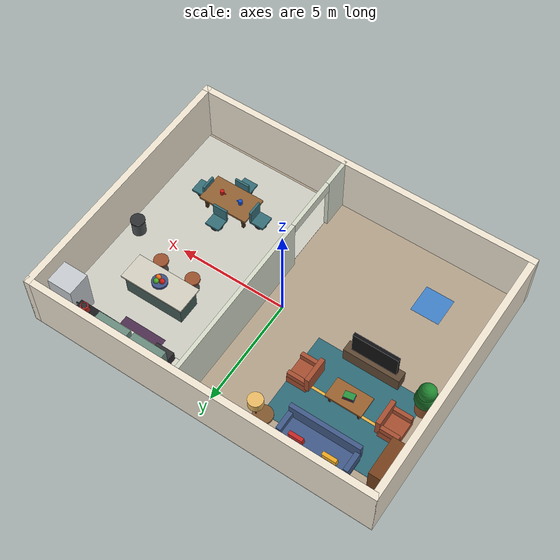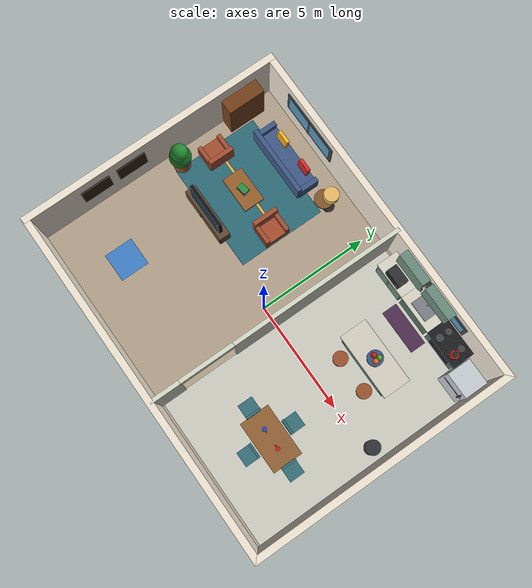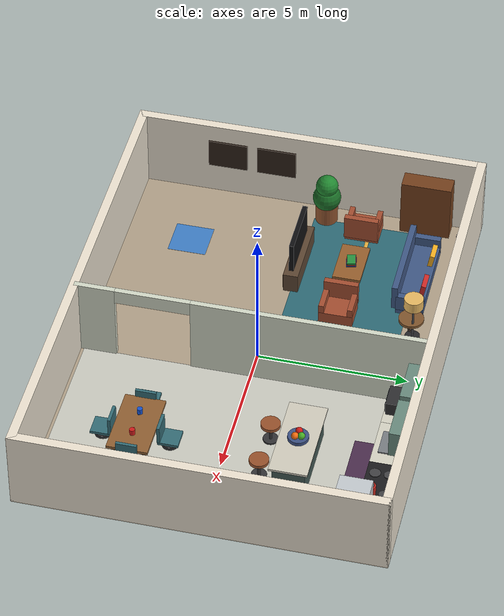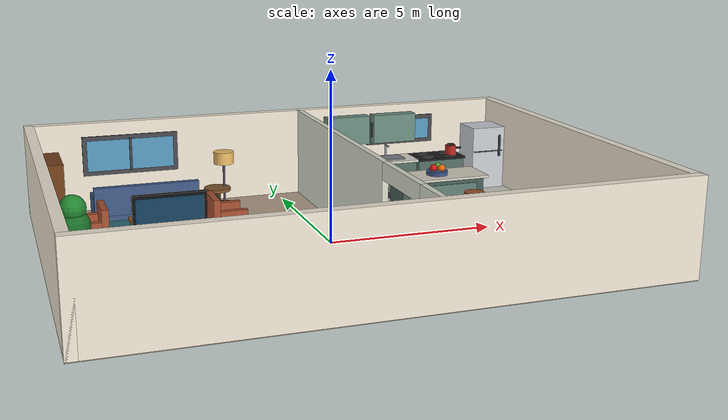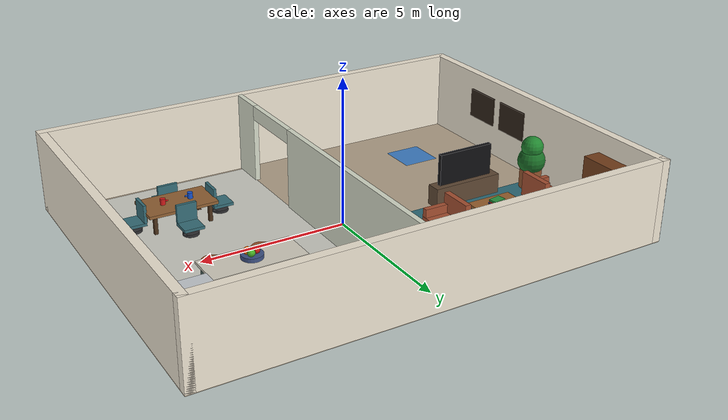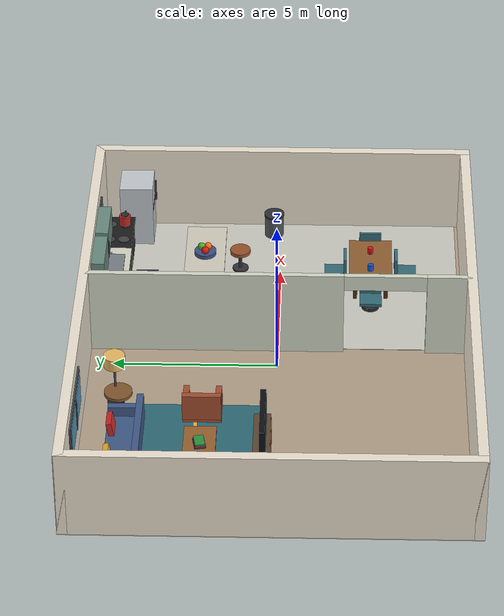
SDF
<?xml version="1.0"?>
<sdf version="1.9">
  <world name="indoor_home_vlm">
    <physics name="fixed_1ms" type="ignored">
      <max_step_size>0.001</max_step_size>
      <real_time_factor>1.0</real_time_factor>
      <real_time_update_rate>1000</real_time_update_rate>
    </physics>

    <gravity>0 0 -9.80665</gravity>
    <plugin filename="gz-sim-physics-system" name="gz::sim::systems::Physics"/>
    <plugin filename="gz-sim-user-commands-system" name="gz::sim::systems::UserCommands"/>
    <plugin filename="gz-sim-scene-broadcaster-system" name="gz::sim::systems::SceneBroadcaster"/>
    <plugin filename="gz-sim-sensors-system" name="gz::sim::systems::Sensors">
      <render_engine>ogre2</render_engine>
    </plugin>

    <!-- Reuse the warm neutral scene palette from the hotel demo. -->
    <scene>
      <ambient>0.62 0.58 0.53 1</ambient>
      <background>0.16 0.18 0.22 1</background>
      <shadows>true</shadows>
    </scene>

    <light name="living_room_light" type="point">
      <pose>-4 1.0 4.0 0 0 0</pose>
      <cast_shadows>true</cast_shadows>
      <diffuse>1.0 0.84 0.68 1</diffuse>
      <specular>0.16 0.14 0.12 1</specular>
      <attenuation>
        <range>13</range>
        <constant>0.75</constant>
        <linear>0.035</linear>
        <quadratic>0.002</quadratic>
      </attenuation>
    </light>

    <light name="kitchen_light" type="point">
      <pose>4 1.0 4.0 0 0 0</pose>
      <cast_shadows>false</cast_shadows>
      <diffuse>0.92 0.94 1.0 1</diffuse>
      <specular>0.16 0.16 0.18 1</specular>
      <attenuation>
        <range>13</range>
        <constant>0.75</constant>
        <linear>0.035</linear>
        <quadratic>0.002</quadratic>
      </attenuation>
    </light>

    <!-- ========================= ARCHITECTURE ========================= -->

    <model name="home_floor">
      <static>true</static>
      <link name="floor_link">
        <collision name="floor_collision">
          <geometry>
            <plane><normal>0 0 1</normal><size>16 12</size></plane>
          </geometry>
          <surface>
            <friction>
              <ode><mu>1.2</mu><mu2>1.2</mu2></ode>
            </friction>
          </surface>
        </collision>
        <visual name="floor_visual">
          <geometry>
            <plane><normal>0 0 1</normal><size>16 12</size></plane>
          </geometry>
          <material>
            <ambient>0.55 0.49 0.42 1</ambient>
            <diffuse>0.70 0.63 0.54 1</diffuse>
            <specular>0.12 0.12 0.12 1</specular>
          </material>
        </visual>
      </link>
    </model>

    <model name="living_room_rug">
      <static>true</static>
      <pose>-4.5 2.35 0.007 0 0 0</pose>
      <link name="rug_link">
        <visual name="rug_visual">
          <geometry><box><size>5.0 4.0 0.014</size></box></geometry>
          <material>
            <ambient>0.12 0.25 0.29 1</ambient>
            <diffuse>0.18 0.42 0.47 1</diffuse>
            <specular>0.02 0.02 0.02 1</specular>
          </material>
        </visual>
        <visual name="rug_center_stripe">
          <pose>0 0 0.009 0 0 0</pose>
          <geometry><box><size>4.3 0.12 0.006</size></box></geometry>
          <material>
            <ambient>0.74 0.54 0.18 1</ambient>
            <diffuse>0.92 0.70 0.25 1</diffuse>
          </material>
        </visual>
      </link>
    </model>

    <model name="kitchen_floor_inlay">
      <static>true</static>
      <pose>4.35 0 0.006 0 0 0</pose>
      <link name="inlay_link">
        <visual name="inlay_visual">
          <geometry><box><size>6.9 11.2 0.012</size></box></geometry>
          <material>
            <ambient>0.64 0.64 0.61 1</ambient>
            <diffuse>0.80 0.80 0.76 1</diffuse>
            <specular>0.18 0.18 0.18 1</specular>
          </material>
        </visual>
      </link>
    </model>

    <model name="north_wall">
      <static>true</static>
      <pose>0 5.85 1.4 0 0 0</pose>
      <link name="wall_link">
        <collision name="wall_collision">
          <geometry><box><size>16 0.30 2.8</size></box></geometry>
        </collision>
        <visual name="wall_visual">
          <geometry><box><size>16 0.30 2.8</size></box></geometry>
          <material>
            <ambient>0.82 0.78 0.72 1</ambient>
            <diffuse>0.94 0.90 0.83 1</diffuse>
          </material>
        </visual>
      </link>
    </model>

    <model name="south_wall">
      <static>true</static>
      <pose>0 -5.85 1.4 0 0 0</pose>
      <link name="wall_link">
        <collision name="wall_collision">
          <geometry><box><size>16 0.30 2.8</size></box></geometry>
        </collision>
        <visual name="wall_visual">
          <geometry><box><size>16 0.30 2.8</size></box></geometry>
          <material>
            <ambient>0.82 0.78 0.72 1</ambient>
            <diffuse>0.94 0.90 0.83 1</diffuse>
          </material>
        </visual>
      </link>
    </model>

    <model name="west_wall">
      <static>true</static>
      <pose>-7.85 0 1.4 0 0 0</pose>
      <link name="wall_link">
        <collision name="wall_collision">
          <geometry><box><size>0.30 12 2.8</size></box></geometry>
        </collision>
        <visual name="wall_visual">
          <geometry><box><size>0.30 12 2.8</size></box></geometry>
          <material>
            <ambient>0.82 0.78 0.72 1</ambient>
            <diffuse>0.94 0.90 0.83 1</diffuse>
          </material>
        </visual>
      </link>
    </model>

    <model name="east_wall">
      <static>true</static>
      <pose>7.85 0 1.4 0 0 0</pose>
      <link name="wall_link">
        <collision name="wall_collision">
          <geometry><box><size>0.30 12 2.8</size></box></geometry>
        </collision>
        <visual name="wall_visual">
          <geometry><box><size>0.30 12 2.8</size></box></geometry>
          <material>
            <ambient>0.82 0.78 0.72 1</ambient>
            <diffuse>0.94 0.90 0.83 1</diffuse>
          </material>
        </visual>
      </link>
    </model>

    <!-- Two wall segments leave a 2.5 m opening from y=-4.5 to y=-2.0. -->
    <model name="room_partition_north">
      <static>true</static>
      <pose>0.85 1.925 1.4 0 0 0</pose>
      <link name="partition_link">
        <collision name="partition_collision">
          <geometry><box><size>0.18 7.85 2.8</size></box></geometry>
        </collision>
        <visual name="partition_visual">
          <geometry><box><size>0.18 7.85 2.8</size></box></geometry>
          <material>
            <ambient>0.70 0.72 0.66 1</ambient>
            <diffuse>0.84 0.86 0.79 1</diffuse>
          </material>
        </visual>
      </link>
    </model>

    <model name="room_partition_south">
      <static>true</static>
      <pose>0.85 -5.175 1.4 0 0 0</pose>
      <link name="partition_link">
        <collision name="partition_collision">
          <geometry><box><size>0.18 1.35 2.8</size></box></geometry>
        </collision>
        <visual name="partition_visual">
          <geometry><box><size>0.18 1.35 2.8</size></box></geometry>
          <material>
            <ambient>0.70 0.72 0.66 1</ambient>
            <diffuse>0.84 0.86 0.79 1</diffuse>
          </material>
        </visual>
      </link>
    </model>

    <model name="room_doorway_header">
      <static>true</static>
      <pose>0.85 -3.25 2.55 0 0 0</pose>
      <link name="header_link">
        <collision name="header_collision">
          <geometry><box><size>0.18 2.5 0.5</size></box></geometry>
        </collision>
        <visual name="header_visual">
          <geometry><box><size>0.18 2.5 0.5</size></box></geometry>
          <material>
            <ambient>0.70 0.72 0.66 1</ambient>
            <diffuse>0.84 0.86 0.79 1</diffuse>
          </material>
        </visual>
      </link>
    </model>

    <model name="living_room_window">
      <static>true</static>
      <pose>-4.8 5.67 1.75 0 0 0</pose>
      <link name="window_link">
        <visual name="window_frame">
          <geometry><box><size>3.0 0.05 1.25</size></box></geometry>
          <material>
            <ambient>0.18 0.18 0.19 1</ambient>
            <diffuse>0.28 0.28 0.30 1</diffuse>
          </material>
        </visual>
        <visual name="window_glass">
          <pose>0 -0.031 0 0 0 0</pose>
          <geometry><box><size>2.72 0.025 0.98</size></box></geometry>
          <material>
            <ambient>0.23 0.43 0.56 1</ambient>
            <diffuse>0.34 0.60 0.74 1</diffuse>
            <specular>0.35 0.35 0.35 1</specular>
          </material>
        </visual>
        <visual name="window_mullion">
          <pose>0 -0.05 0 0 0 0</pose>
          <geometry><box><size>0.08 0.04 1.04</size></box></geometry>
          <material>
            <ambient>0.16 0.16 0.17 1</ambient>
            <diffuse>0.25 0.25 0.27 1</diffuse>
          </material>
        </visual>
      </link>
    </model>

    <model name="kitchen_window">
      <static>true</static>
      <pose>4.4 5.67 1.92 0 0 0</pose>
      <link name="window_link">
        <visual name="window_frame">
          <geometry><box><size>2.4 0.05 0.95</size></box></geometry>
          <material>
            <ambient>0.18 0.18 0.19 1</ambient>
            <diffuse>0.28 0.28 0.30 1</diffuse>
          </material>
        </visual>
        <visual name="window_glass">
          <pose>0 -0.031 0 0 0 0</pose>
          <geometry><box><size>2.12 0.025 0.68</size></box></geometry>
          <material>
            <ambient>0.23 0.43 0.56 1</ambient>
            <diffuse>0.34 0.60 0.74 1</diffuse>
            <specular>0.35 0.35 0.35 1</specular>
          </material>
        </visual>
      </link>
    </model>

    <model name="home_spawn_zone">
      <static>true</static>
      <pose>-5.0 -3.5 0.015 0 0 0</pose>
      <link name="spawn_zone_link">
        <visual name="spawn_zone_visual">
          <geometry><box><size>1.3 1.3 0.01</size></box></geometry>
          <material>
            <ambient>0.04 0.34 0.82 0.65</ambient>
            <diffuse>0.05 0.48 0.96 0.65</diffuse>
          </material>
        </visual>
      </link>
    </model>

    <!-- ========================= LIVING ROOM ========================= -->

    <model name="living_sofa">
      <static>true</static>
      <pose>-4.6 4.35 0.48 0 0 3.141592653589793</pose>
      <link name="sofa_link">
        <collision name="sofa_collision">
          <geometry><box><size>3.2 1.05 0.96</size></box></geometry>
        </collision>
        <visual name="sofa_seat">
          <pose>0 -0.08 -0.20 0 0 0</pose>
          <geometry><box><size>3.2 0.92 0.40</size></box></geometry>
          <material>
            <ambient>0.17 0.23 0.34 1</ambient>
            <diffuse>0.25 0.35 0.53 1</diffuse>
          </material>
        </visual>
        <visual name="sofa_back">
          <pose>0 0.42 0.24 0 0 0</pose>
          <geometry><box><size>3.2 0.20 0.88</size></box></geometry>
          <material>
            <ambient>0.17 0.23 0.34 1</ambient>
            <diffuse>0.25 0.35 0.53 1</diffuse>
          </material>
        </visual>
        <visual name="sofa_left_arm">
          <pose>-1.50 -0.08 0.04 0 0 0</pose>
          <geometry><box><size>0.22 0.92 0.56</size></box></geometry>
          <material>
            <ambient>0.17 0.23 0.34 1</ambient>
            <diffuse>0.25 0.35 0.53 1</diffuse>
          </material>
        </visual>
        <visual name="sofa_right_arm">
          <pose>1.50 -0.08 0.04 0 0 0</pose>
          <geometry><box><size>0.22 0.92 0.56</size></box></geometry>
          <material>
            <ambient>0.17 0.23 0.34 1</ambient>
            <diffuse>0.25 0.35 0.53 1</diffuse>
          </material>
        </visual>
        <visual name="sofa_red_cushion">
          <pose>-0.75 -0.40 0.16 0.18 0 0</pose>
          <geometry><box><size>0.62 0.16 0.56</size></box></geometry>
          <material>
            <ambient>0.56 0.10 0.10 1</ambient>
            <diffuse>0.80 0.16 0.15 1</diffuse>
          </material>
        </visual>
        <visual name="sofa_yellow_cushion">
          <pose>0.75 -0.40 0.16 0.18 0 0</pose>
          <geometry><box><size>0.62 0.16 0.56</size></box></geometry>
          <material>
            <ambient>0.70 0.47 0.08 1</ambient>
            <diffuse>0.95 0.68 0.13 1</diffuse>
          </material>
        </visual>
      </link>
    </model>

    <model name="living_armchair_west">
      <static>true</static>
      <pose>-6.55 2.15 0.47 0 0 -1.570796326794897</pose>
      <link name="chair_link">
        <collision name="chair_collision">
          <geometry><box><size>1.15 1.05 0.94</size></box></geometry>
        </collision>
        <visual name="chair_seat">
          <pose>0 -0.08 -0.20 0 0 0</pose>
          <geometry><box><size>1.15 0.90 0.40</size></box></geometry>
          <material>
            <ambient>0.42 0.19 0.12 1</ambient>
            <diffuse>0.65 0.31 0.19 1</diffuse>
          </material>
        </visual>
        <visual name="chair_back">
          <pose>0 0.40 0.22 0 0 0</pose>
          <geometry><box><size>1.15 0.20 0.84</size></box></geometry>
          <material>
            <ambient>0.42 0.19 0.12 1</ambient>
            <diffuse>0.65 0.31 0.19 1</diffuse>
          </material>
        </visual>
        <visual name="chair_left_arm">
          <pose>-0.48 -0.08 0.02 0 0 0</pose>
          <geometry><box><size>0.18 0.88 0.54</size></box></geometry>
          <material>
            <ambient>0.42 0.19 0.12 1</ambient>
            <diffuse>0.65 0.31 0.19 1</diffuse>
          </material>
        </visual>
        <visual name="chair_right_arm">
          <pose>0.48 -0.08 0.02 0 0 0</pose>
          <geometry><box><size>0.18 0.88 0.54</size></box></geometry>
          <material>
            <ambient>0.42 0.19 0.12 1</ambient>
            <diffuse>0.65 0.31 0.19 1</diffuse>
          </material>
        </visual>
      </link>
    </model>

    <model name="living_armchair_east">
      <static>true</static>
      <pose>-2.55 2.15 0.47 0 0 1.570796326794897</pose>
      <link name="chair_link">
        <collision name="chair_collision">
          <geometry><box><size>1.15 1.05 0.94</size></box></geometry>
        </collision>
        <visual name="chair_seat">
          <pose>0 -0.08 -0.20 0 0 0</pose>
          <geometry><box><size>1.15 0.90 0.40</size></box></geometry>
          <material>
            <ambient>0.42 0.19 0.12 1</ambient>
            <diffuse>0.65 0.31 0.19 1</diffuse>
          </material>
        </visual>
        <visual name="chair_back">
          <pose>0 0.40 0.22 0 0 0</pose>
          <geometry><box><size>1.15 0.20 0.84</size></box></geometry>
          <material>
            <ambient>0.42 0.19 0.12 1</ambient>
            <diffuse>0.65 0.31 0.19 1</diffuse>
          </material>
        </visual>
        <visual name="chair_left_arm">
          <pose>-0.48 -0.08 0.02 0 0 0</pose>
          <geometry><box><size>0.18 0.88 0.54</size></box></geometry>
          <material>
            <ambient>0.42 0.19 0.12 1</ambient>
            <diffuse>0.65 0.31 0.19 1</diffuse>
          </material>
        </visual>
        <visual name="chair_right_arm">
          <pose>0.48 -0.08 0.02 0 0 0</pose>
          <geometry><box><size>0.18 0.88 0.54</size></box></geometry>
          <material>
            <ambient>0.42 0.19 0.12 1</ambient>
            <diffuse>0.65 0.31 0.19 1</diffuse>
          </material>
        </visual>
      </link>
    </model>

    <model name="living_coffee_table">
      <static>true</static>
      <pose>-4.55 2.15 0.28 0 0 0</pose>
      <link name="table_link">
        <collision name="table_collision">
          <geometry><box><size>1.65 0.95 0.56</size></box></geometry>
        </collision>
        <visual name="table_top">
          <pose>0 0 0.23 0 0 0</pose>
          <geometry><box><size>1.65 0.95 0.10</size></box></geometry>
          <material>
            <ambient>0.36 0.21 0.10 1</ambient>
            <diffuse>0.60 0.38 0.18 1</diffuse>
            <specular>0.15 0.15 0.15 1</specular>
          </material>
        </visual>
        <visual name="table_leg_nw">
          <pose>-0.66 0.31 -0.02 0 0 0</pose>
          <geometry><box><size>0.10 0.10 0.48</size></box></geometry>
          <material><diffuse>0.24 0.14 0.07 1</diffuse></material>
        </visual>
        <visual name="table_leg_ne">
          <pose>0.66 0.31 -0.02 0 0 0</pose>
          <geometry><box><size>0.10 0.10 0.48</size></box></geometry>
          <material><diffuse>0.24 0.14 0.07 1</diffuse></material>
        </visual>
        <visual name="table_leg_sw">
          <pose>-0.66 -0.31 -0.02 0 0 0</pose>
          <geometry><box><size>0.10 0.10 0.48</size></box></geometry>
          <material><diffuse>0.24 0.14 0.07 1</diffuse></material>
        </visual>
        <visual name="table_leg_se">
          <pose>0.66 -0.31 -0.02 0 0 0</pose>
          <geometry><box><size>0.10 0.10 0.48</size></box></geometry>
          <material><diffuse>0.24 0.14 0.07 1</diffuse></material>
        </visual>
      </link>
    </model>

    <model name="living_tv_console">
      <static>true</static>
      <pose>-4.55 0.35 0.35 0 0 0</pose>
      <link name="console_link">
        <collision name="console_collision">
          <geometry><box><size>2.55 0.50 0.70</size></box></geometry>
        </collision>
        <visual name="console_body">
          <geometry><box><size>2.55 0.50 0.70</size></box></geometry>
          <material>
            <ambient>0.20 0.15 0.11 1</ambient>
            <diffuse>0.37 0.28 0.20 1</diffuse>
          </material>
        </visual>
        <visual name="console_left_door">
          <pose>-0.68 -0.26 0 0 0 0</pose>
          <geometry><box><size>1.08 0.03 0.55</size></box></geometry>
          <material><diffuse>0.53 0.39 0.27 1</diffuse></material>
        </visual>
        <visual name="console_right_door">
          <pose>0.68 -0.26 0 0 0 0</pose>
          <geometry><box><size>1.08 0.03 0.55</size></box></geometry>
          <material><diffuse>0.53 0.39 0.27 1</diffuse></material>
        </visual>
      </link>
    </model>

    <model name="living_television">
      <static>true</static>
      <pose>-4.55 0.32 1.24 0 0 0</pose>
      <link name="television_link">
        <collision name="television_collision">
          <geometry><box><size>2.05 0.16 1.12</size></box></geometry>
        </collision>
        <visual name="television_frame">
          <geometry><box><size>2.05 0.16 1.12</size></box></geometry>
          <material>
            <ambient>0.03 0.03 0.035 1</ambient>
            <diffuse>0.06 0.06 0.07 1</diffuse>
            <specular>0.30 0.30 0.30 1</specular>
          </material>
        </visual>
        <visual name="television_screen">
          <pose>0 -0.086 0 0 0 0</pose>
          <geometry><box><size>1.88 0.025 0.94</size></box></geometry>
          <material>
            <ambient>0.05 0.13 0.19 1</ambient>
            <diffuse>0.08 0.25 0.36 1</diffuse>
            <emissive>0.015 0.05 0.075 1</emissive>
          </material>
        </visual>
        <visual name="television_stand">
          <pose>0 0 -0.64 0 0 0</pose>
          <geometry><box><size>0.70 0.34 0.16</size></box></geometry>
          <material><diffuse>0.09 0.09 0.10 1</diffuse></material>
        </visual>
      </link>
    </model>

    <model name="living_bookshelf">
      <static>true</static>
      <pose>-7.38 4.15 1.05 0 0 0</pose>
      <link name="bookshelf_link">
        <collision name="bookshelf_collision">
          <geometry><box><size>0.62 1.70 2.10</size></box></geometry>
        </collision>
        <visual name="bookshelf_body">
          <geometry><box><size>0.62 1.70 2.10</size></box></geometry>
          <material>
            <ambient>0.25 0.13 0.06 1</ambient>
            <diffuse>0.46 0.25 0.11 1</diffuse>
          </material>
        </visual>
        <visual name="bookshelf_opening">
          <pose>-0.32 0 0 0 0 0</pose>
          <geometry><box><size>0.025 1.43 1.83</size></box></geometry>
          <material><diffuse>0.10 0.07 0.05 1</diffuse></material>
        </visual>
        <visual name="book_red">
          <pose>-0.35 -0.48 -0.55 0 0 0</pose>
          <geometry><box><size>0.10 0.18 0.48</size></box></geometry>
          <material><diffuse>0.74 0.12 0.12 1</diffuse></material>
        </visual>
        <visual name="book_blue">
          <pose>-0.35 -0.20 -0.52 0 0 0</pose>
          <geometry><box><size>0.10 0.22 0.54</size></box></geometry>
          <material><diffuse>0.12 0.30 0.70 1</diffuse></material>
        </visual>
        <visual name="book_green">
          <pose>-0.35 0.12 -0.57 0 0 0</pose>
          <geometry><box><size>0.10 0.20 0.44</size></box></geometry>
          <material><diffuse>0.12 0.56 0.22 1</diffuse></material>
        </visual>
        <visual name="book_yellow">
          <pose>-0.35 0.43 0.34 0 0 0</pose>
          <geometry><box><size>0.10 0.25 0.50</size></box></geometry>
          <material><diffuse>0.88 0.63 0.10 1</diffuse></material>
        </visual>
      </link>
    </model>

    <model name="living_side_table">
      <static>true</static>
      <pose>-2.25 4.65 0.34 0 0 0</pose>
      <link name="side_table_link">
        <collision name="side_table_collision">
          <geometry><cylinder><radius>0.42</radius><length>0.68</length></cylinder></geometry>
        </collision>
        <visual name="side_table_top">
          <pose>0 0 0.29 0 0 0</pose>
          <geometry><cylinder><radius>0.42</radius><length>0.10</length></cylinder></geometry>
          <material><diffuse>0.51 0.34 0.18 1</diffuse></material>
        </visual>
        <visual name="side_table_leg">
          <pose>0 0 -0.02 0 0 0</pose>
          <geometry><cylinder><radius>0.10</radius><length>0.58</length></cylinder></geometry>
          <material><diffuse>0.24 0.18 0.14 1</diffuse></material>
        </visual>
      </link>
    </model>

    <model name="living_floor_lamp">
      <static>true</static>
      <pose>-2.0 4.75 0.90 0 0 0</pose>
      <link name="lamp_link">
        <collision name="lamp_collision">
          <geometry><cylinder><radius>0.25</radius><length>1.8</length></cylinder></geometry>
        </collision>
        <visual name="lamp_base">
          <pose>0 0 -0.82 0 0 0</pose>
          <geometry><cylinder><radius>0.25</radius><length>0.12</length></cylinder></geometry>
          <material><diffuse>0.15 0.15 0.16 1</diffuse></material>
        </visual>
        <visual name="lamp_post">
          <pose>0 0 -0.10 0 0 0</pose>
          <geometry><cylinder><radius>0.035</radius><length>1.45</length></cylinder></geometry>
          <material><diffuse>0.26 0.26 0.28 1</diffuse></material>
        </visual>
        <visual name="lamp_shade">
          <pose>0 0 0.72 0 0 0</pose>
          <geometry><cylinder><radius>0.32</radius><length>0.38</length></cylinder></geometry>
          <material>
            <ambient>0.70 0.53 0.25 1</ambient>
            <diffuse>0.92 0.73 0.39 1</diffuse>
            <emissive>0.05 0.035 0.012 1</emissive>
          </material>
        </visual>
      </link>
    </model>

    <model name="living_planter">
      <static>true</static>
      <pose>-7.10 0.75 0.43 0 0 0</pose>
      <link name="planter_link">
        <collision name="planter_collision">
          <geometry><cylinder><radius>0.38</radius><length>0.86</length></cylinder></geometry>
        </collision>
        <visual name="planter_pot">
          <pose>0 0 -0.08 0 0 0</pose>
          <geometry><cylinder><radius>0.38</radius><length>0.70</length></cylinder></geometry>
          <material><diffuse>0.57 0.33 0.18 1</diffuse></material>
        </visual>
        <visual name="planter_leaves_lower">
          <pose>0 0 0.55 0 0 0</pose>
          <geometry><sphere><radius>0.48</radius></sphere></geometry>
          <material><diffuse>0.10 0.43 0.15 1</diffuse></material>
        </visual>
        <visual name="planter_leaves_upper">
          <pose>0 0 1.05 0 0 0</pose>
          <geometry><sphere><radius>0.38</radius></sphere></geometry>
          <material><diffuse>0.13 0.53 0.19 1</diffuse></material>
        </visual>
      </link>
    </model>

    <model name="living_wall_art_blue">
      <static>true</static>
      <pose>-7.67 -1.15 1.65 0 0 0</pose>
      <link name="art_link">
        <visual name="art_frame">
          <geometry><box><size>0.05 1.35 1.05</size></box></geometry>
          <material><diffuse>0.18 0.13 0.09 1</diffuse></material>
        </visual>
        <visual name="art_canvas">
          <pose>-0.031 0 0 0 0 0</pose>
          <geometry><box><size>0.025 1.12 0.82</size></box></geometry>
          <material><diffuse>0.12 0.43 0.70 1</diffuse></material>
        </visual>
      </link>
    </model>

    <model name="living_wall_art_orange">
      <static>true</static>
      <pose>-7.67 -2.85 1.65 0 0 0</pose>
      <link name="art_link">
        <visual name="art_frame">
          <geometry><box><size>0.05 1.35 1.05</size></box></geometry>
          <material><diffuse>0.18 0.13 0.09 1</diffuse></material>
        </visual>
        <visual name="art_canvas">
          <pose>-0.031 0 0 0 0 0</pose>
          <geometry><box><size>0.025 1.12 0.82</size></box></geometry>
          <material><diffuse>0.86 0.35 0.10 1</diffuse></material>
        </visual>
      </link>
    </model>

    <model name="living_book_stack">
      <static>true</static>
      <pose>-4.55 2.15 0.61 0 0 0.18</pose>
      <link name="book_stack_link">
        <collision name="book_stack_collision">
          <geometry><box><size>0.48 0.34 0.18</size></box></geometry>
        </collision>
        <visual name="bottom_book">
          <pose>0 0 -0.06 0 0 0</pose>
          <geometry><box><size>0.48 0.34 0.06</size></box></geometry>
          <material><diffuse>0.12 0.28 0.66 1</diffuse></material>
        </visual>
        <visual name="middle_book">
          <geometry><box><size>0.42 0.31 0.06</size></box></geometry>
          <material><diffuse>0.78 0.15 0.12 1</diffuse></material>
        </visual>
        <visual name="top_book">
          <pose>0 0 0.06 0 0 0</pose>
          <geometry><box><size>0.45 0.29 0.06</size></box></geometry>
          <material><diffuse>0.16 0.58 0.25 1</diffuse></material>
        </visual>
      </link>
    </model>

    <!-- ====================== KITCHEN / DINING ====================== -->

    <model name="kitchen_base_cabinet_west">
      <static>true</static>
      <pose>2.15 5.20 0.48 0 0 0</pose>
      <link name="cabinet_link">
        <collision name="cabinet_collision">
          <geometry><box><size>1.55 0.92 0.96</size></box></geometry>
        </collision>
        <visual name="cabinet_body">
          <geometry><box><size>1.55 0.92 0.96</size></box></geometry>
          <material><diffuse>0.33 0.43 0.39 1</diffuse></material>
        </visual>
        <visual name="cabinet_top">
          <pose>0 0 0.52 0 0 0</pose>
          <geometry><box><size>1.65 1.0 0.08</size></box></geometry>
          <material>
            <diffuse>0.85 0.84 0.78 1</diffuse>
            <specular>0.24 0.24 0.24 1</specular>
          </material>
        </visual>
        <visual name="cabinet_door_left">
          <pose>-0.39 -0.47 0 0 0 0</pose>
          <geometry><box><size>0.68 0.025 0.78</size></box></geometry>
          <material><diffuse>0.42 0.55 0.50 1</diffuse></material>
        </visual>
        <visual name="cabinet_door_right">
          <pose>0.39 -0.47 0 0 0 0</pose>
          <geometry><box><size>0.68 0.025 0.78</size></box></geometry>
          <material><diffuse>0.42 0.55 0.50 1</diffuse></material>
        </visual>
      </link>
    </model>

    <model name="kitchen_sink_counter">
      <static>true</static>
      <pose>3.85 5.20 0.48 0 0 0</pose>
      <link name="sink_counter_link">
        <collision name="sink_counter_collision">
          <geometry><box><size>1.65 0.92 0.96</size></box></geometry>
        </collision>
        <visual name="sink_cabinet">
          <geometry><box><size>1.65 0.92 0.96</size></box></geometry>
          <material><diffuse>0.33 0.43 0.39 1</diffuse></material>
        </visual>
        <visual name="sink_countertop">
          <pose>0 0 0.52 0 0 0</pose>
          <geometry><box><size>1.75 1.0 0.08</size></box></geometry>
          <material>
            <diffuse>0.85 0.84 0.78 1</diffuse>
            <specular>0.24 0.24 0.24 1</specular>
          </material>
        </visual>
        <visual name="sink_basin">
          <pose>0 -0.03 0.575 0 0 0</pose>
          <geometry><box><size>0.92 0.58 0.07</size></box></geometry>
          <material>
            <diffuse>0.48 0.50 0.52 1</diffuse>
            <specular>0.40 0.40 0.40 1</specular>
          </material>
        </visual>
        <visual name="sink_faucet_post">
          <pose>0 0.31 0.78 0 0 0</pose>
          <geometry><cylinder><radius>0.035</radius><length>0.40</length></cylinder></geometry>
          <material><diffuse>0.55 0.57 0.59 1</diffuse></material>
        </visual>
        <visual name="sink_faucet_spout">
          <pose>0 0.19 0.96 1.570796326794897 0 0</pose>
          <geometry><cylinder><radius>0.03</radius><length>0.28</length></cylinder></geometry>
          <material><diffuse>0.55 0.57 0.59 1</diffuse></material>
        </visual>
      </link>
    </model>

    <model name="kitchen_stove_counter">
      <static>true</static>
      <pose>5.60 5.20 0.48 0 0 0</pose>
      <link name="stove_counter_link">
        <collision name="stove_counter_collision">
          <geometry><box><size>1.65 0.92 0.96</size></box></geometry>
        </collision>
        <visual name="stove_cabinet">
          <geometry><box><size>1.65 0.92 0.96</size></box></geometry>
          <material><diffuse>0.33 0.43 0.39 1</diffuse></material>
        </visual>
        <visual name="stove_top">
          <pose>0 0 0.52 0 0 0</pose>
          <geometry><box><size>1.75 1.0 0.08</size></box></geometry>
          <material><diffuse>0.11 0.11 0.12 1</diffuse></material>
        </visual>
        <visual name="burner_front_left">
          <pose>-0.42 -0.22 0.575 0 0 0</pose>
          <geometry><cylinder><radius>0.18</radius><length>0.025</length></cylinder></geometry>
          <material><diffuse>0.26 0.26 0.27 1</diffuse></material>
        </visual>
        <visual name="burner_front_right">
          <pose>0.42 -0.22 0.575 0 0 0</pose>
          <geometry><cylinder><radius>0.18</radius><length>0.025</length></cylinder></geometry>
          <material><diffuse>0.26 0.26 0.27 1</diffuse></material>
        </visual>
        <visual name="burner_back_left">
          <pose>-0.42 0.22 0.575 0 0 0</pose>
          <geometry><cylinder><radius>0.16</radius><length>0.025</length></cylinder></geometry>
          <material><diffuse>0.26 0.26 0.27 1</diffuse></material>
        </visual>
        <visual name="burner_back_right">
          <pose>0.42 0.22 0.575 0 0 0</pose>
          <geometry><cylinder><radius>0.16</radius><length>0.025</length></cylinder></geometry>
          <material><diffuse>0.26 0.26 0.27 1</diffuse></material>
        </visual>
        <visual name="oven_window">
          <pose>0 -0.47 -0.08 0 0 0</pose>
          <geometry><box><size>1.15 0.025 0.48</size></box></geometry>
          <material><diffuse>0.08 0.10 0.12 1</diffuse></material>
        </visual>
      </link>
    </model>

    <model name="kitchen_refrigerator">
      <static>true</static>
      <pose>7.05 4.65 1.05 0 0 0</pose>
      <link name="refrigerator_link">
        <collision name="refrigerator_collision">
          <geometry><box><size>1.15 1.05 2.10</size></box></geometry>
        </collision>
        <visual name="refrigerator_body">
          <geometry><box><size>1.15 1.05 2.10</size></box></geometry>
          <material>
            <ambient>0.60 0.62 0.64 1</ambient>
            <diffuse>0.78 0.80 0.82 1</diffuse>
            <specular>0.30 0.30 0.30 1</specular>
          </material>
        </visual>
        <visual name="refrigerator_door_line">
          <pose>0 -0.53 0.24 0 0 0</pose>
          <geometry><box><size>1.05 0.025 0.035</size></box></geometry>
          <material><diffuse>0.25 0.26 0.27 1</diffuse></material>
        </visual>
        <visual name="refrigerator_handle">
          <pose>0.39 -0.56 0.42 0 0 0</pose>
          <geometry><box><size>0.06 0.06 0.72</size></box></geometry>
          <material><diffuse>0.22 0.23 0.24 1</diffuse></material>
        </visual>
      </link>
    </model>

    <model name="kitchen_upper_cabinets">
      <static>true</static>
      <pose>3.25 5.57 2.05 0 0 0</pose>
      <link name="upper_cabinets_link">
        <visual name="upper_cabinet_left">
          <pose>-0.83 0 0 0 0 0</pose>
          <geometry><box><size>1.50 0.55 0.95</size></box></geometry>
          <material><diffuse>0.42 0.55 0.50 1</diffuse></material>
        </visual>
        <visual name="upper_cabinet_right">
          <pose>0.83 0 0 0 0 0</pose>
          <geometry><box><size>1.50 0.55 0.95</size></box></geometry>
          <material><diffuse>0.42 0.55 0.50 1</diffuse></material>
        </visual>
        <visual name="upper_cabinet_handles">
          <pose>0 -0.29 0 0 0 0</pose>
          <geometry><box><size>0.05 0.04 0.50</size></box></geometry>
          <material><diffuse>0.20 0.20 0.21 1</diffuse></material>
        </visual>
      </link>
    </model>

    <model name="kitchen_microwave">
      <static>true</static>
      <pose>2.20 5.0 1.28 0 0 0</pose>
      <link name="microwave_link">
        <collision name="microwave_collision">
          <geometry><box><size>0.82 0.48 0.48</size></box></geometry>
        </collision>
        <visual name="microwave_body">
          <geometry><box><size>0.82 0.48 0.48</size></box></geometry>
          <material><diffuse>0.18 0.18 0.19 1</diffuse></material>
        </visual>
        <visual name="microwave_door">
          <pose>-0.08 -0.251 0 0 0 0</pose>
          <geometry><box><size>0.52 0.025 0.34</size></box></geometry>
          <material><diffuse>0.06 0.09 0.11 1</diffuse></material>
        </visual>
        <visual name="microwave_panel">
          <pose>0.31 -0.252 0 0 0 0</pose>
          <geometry><box><size>0.12 0.025 0.34</size></box></geometry>
          <material><diffuse>0.36 0.37 0.38 1</diffuse></material>
        </visual>
      </link>
    </model>

    <model name="kitchen_island">
      <static>true</static>
      <pose>4.35 2.35 0.52 0 0 0</pose>
      <link name="island_link">
        <collision name="island_collision">
          <geometry><box><size>2.75 1.05 1.04</size></box></geometry>
        </collision>
        <visual name="island_body">
          <geometry><box><size>2.75 1.05 1.04</size></box></geometry>
          <material><diffuse>0.27 0.36 0.34 1</diffuse></material>
        </visual>
        <visual name="island_top">
          <pose>0 0 0.56 0 0 0</pose>
          <geometry><box><size>3.0 1.25 0.08</size></box></geometry>
          <material>
            <diffuse>0.83 0.81 0.75 1</diffuse>
            <specular>0.22 0.22 0.22 1</specular>
          </material>
        </visual>
        <visual name="island_front_panel">
          <pose>0 -0.54 0 0 0 0</pose>
          <geometry><box><size>2.25 0.03 0.76</size></box></geometry>
          <material><diffuse>0.38 0.50 0.47 1</diffuse></material>
        </visual>
      </link>
    </model>

    <model name="kitchen_island_stool_left">
      <static>true</static>
      <pose>3.55 1.28 0.38 0 0 0</pose>
      <link name="stool_link">
        <collision name="stool_collision">
          <geometry><cylinder><radius>0.32</radius><length>0.76</length></cylinder></geometry>
        </collision>
        <visual name="stool_seat">
          <pose>0 0 0.31 0 0 0</pose>
          <geometry><cylinder><radius>0.32</radius><length>0.12</length></cylinder></geometry>
          <material><diffuse>0.60 0.32 0.17 1</diffuse></material>
        </visual>
        <visual name="stool_post">
          <pose>0 0 -0.05 0 0 0</pose>
          <geometry><cylinder><radius>0.055</radius><length>0.62</length></cylinder></geometry>
          <material><diffuse>0.20 0.20 0.21 1</diffuse></material>
        </visual>
        <visual name="stool_base">
          <pose>0 0 -0.34 0 0 0</pose>
          <geometry><cylinder><radius>0.25</radius><length>0.06</length></cylinder></geometry>
          <material><diffuse>0.20 0.20 0.21 1</diffuse></material>
        </visual>
      </link>
    </model>

    <model name="kitchen_island_stool_right">
      <static>true</static>
      <pose>5.15 1.28 0.38 0 0 0</pose>
      <link name="stool_link">
        <collision name="stool_collision">
          <geometry><cylinder><radius>0.32</radius><length>0.76</length></cylinder></geometry>
        </collision>
        <visual name="stool_seat">
          <pose>0 0 0.31 0 0 0</pose>
          <geometry><cylinder><radius>0.32</radius><length>0.12</length></cylinder></geometry>
          <material><diffuse>0.60 0.32 0.17 1</diffuse></material>
        </visual>
        <visual name="stool_post">
          <pose>0 0 -0.05 0 0 0</pose>
          <geometry><cylinder><radius>0.055</radius><length>0.62</length></cylinder></geometry>
          <material><diffuse>0.20 0.20 0.21 1</diffuse></material>
        </visual>
        <visual name="stool_base">
          <pose>0 0 -0.34 0 0 0</pose>
          <geometry><cylinder><radius>0.25</radius><length>0.06</length></cylinder></geometry>
          <material><diffuse>0.20 0.20 0.21 1</diffuse></material>
        </visual>
      </link>
    </model>

    <model name="kitchen_kettle">
      <static>true</static>
      <pose>6.05 5.0 1.22 0 0 0</pose>
      <link name="kettle_link">
        <collision name="kettle_collision">
          <geometry><cylinder><radius>0.18</radius><length>0.34</length></cylinder></geometry>
        </collision>
        <visual name="kettle_body">
          <geometry><cylinder><radius>0.18</radius><length>0.34</length></cylinder></geometry>
          <material>
            <diffuse>0.76 0.16 0.12 1</diffuse>
            <specular>0.20 0.20 0.20 1</specular>
          </material>
        </visual>
        <visual name="kettle_lid">
          <pose>0 0 0.19 0 0 0</pose>
          <geometry><cylinder><radius>0.12</radius><length>0.05</length></cylinder></geometry>
          <material><diffuse>0.16 0.16 0.17 1</diffuse></material>
        </visual>
        <visual name="kettle_handle">
          <pose>0.22 0 0.06 0 1.570796326794897 0</pose>
          <geometry><cylinder><radius>0.035</radius><length>0.34</length></cylinder></geometry>
          <material><diffuse>0.12 0.12 0.13 1</diffuse></material>
        </visual>
      </link>
    </model>

    <model name="kitchen_fruit_bowl">
      <static>true</static>
      <pose>4.35 2.35 1.18 0 0 0</pose>
      <link name="fruit_bowl_link">
        <collision name="fruit_bowl_collision">
          <geometry><cylinder><radius>0.34</radius><length>0.18</length></cylinder></geometry>
        </collision>
        <visual name="bowl">
          <geometry><cylinder><radius>0.34</radius><length>0.14</length></cylinder></geometry>
          <material><diffuse>0.24 0.32 0.52 1</diffuse></material>
        </visual>
        <visual name="red_fruit">
          <pose>-0.13 0 0.15 0 0 0</pose>
          <geometry><sphere><radius>0.12</radius></sphere></geometry>
          <material><diffuse>0.82 0.10 0.08 1</diffuse></material>
        </visual>
        <visual name="orange_fruit">
          <pose>0.11 -0.08 0.15 0 0 0</pose>
          <geometry><sphere><radius>0.12</radius></sphere></geometry>
          <material><diffuse>0.95 0.42 0.06 1</diffuse></material>
        </visual>
        <visual name="green_fruit">
          <pose>0.08 0.12 0.16 0 0 0</pose>
          <geometry><sphere><radius>0.12</radius></sphere></geometry>
          <material><diffuse>0.28 0.68 0.15 1</diffuse></material>
        </visual>
      </link>
    </model>

    <model name="dining_table">
      <static>true</static>
      <pose>4.55 -2.85 0.38 0 0 0</pose>
      <link name="dining_table_link">
        <collision name="dining_table_collision">
          <geometry><box><size>2.35 1.35 0.76</size></box></geometry>
        </collision>
        <visual name="dining_table_top">
          <pose>0 0 0.33 0 0 0</pose>
          <geometry><box><size>2.35 1.35 0.10</size></box></geometry>
          <material><diffuse>0.57 0.38 0.20 1</diffuse></material>
        </visual>
        <visual name="dining_table_leg_nw">
          <pose>-0.94 0.48 -0.02 0 0 0</pose>
          <geometry><box><size>0.12 0.12 0.66</size></box></geometry>
          <material><diffuse>0.29 0.19 0.10 1</diffuse></material>
        </visual>
        <visual name="dining_table_leg_ne">
          <pose>0.94 0.48 -0.02 0 0 0</pose>
          <geometry><box><size>0.12 0.12 0.66</size></box></geometry>
          <material><diffuse>0.29 0.19 0.10 1</diffuse></material>
        </visual>
        <visual name="dining_table_leg_sw">
          <pose>-0.94 -0.48 -0.02 0 0 0</pose>
          <geometry><box><size>0.12 0.12 0.66</size></box></geometry>
          <material><diffuse>0.29 0.19 0.10 1</diffuse></material>
        </visual>
        <visual name="dining_table_leg_se">
          <pose>0.94 -0.48 -0.02 0 0 0</pose>
          <geometry><box><size>0.12 0.12 0.66</size></box></geometry>
          <material><diffuse>0.29 0.19 0.10 1</diffuse></material>
        </visual>
      </link>
    </model>

    <model name="dining_chair_north">
      <static>true</static>
      <pose>4.55 -1.75 0.48 0 0 3.141592653589793</pose>
      <link name="chair_link">
        <collision name="chair_collision">
          <geometry><box><size>0.72 0.72 0.96</size></box></geometry>
        </collision>
        <visual name="chair_seat">
          <pose>0 0 -0.12 0 0 0</pose>
          <geometry><box><size>0.68 0.68 0.10</size></box></geometry>
          <material><diffuse>0.21 0.43 0.47 1</diffuse></material>
        </visual>
        <visual name="chair_back">
          <pose>0 0.30 0.23 0 0 0</pose>
          <geometry><box><size>0.68 0.10 0.62</size></box></geometry>
          <material><diffuse>0.21 0.43 0.47 1</diffuse></material>
        </visual>
        <visual name="chair_base">
          <pose>0 0 -0.37 0 0 0</pose>
          <geometry><cylinder><radius>0.27</radius><length>0.10</length></cylinder></geometry>
          <material><diffuse>0.18 0.18 0.19 1</diffuse></material>
        </visual>
      </link>
    </model>

    <model name="dining_chair_south">
      <static>true</static>
      <pose>4.55 -3.95 0.48 0 0 0</pose>
      <link name="chair_link">
        <collision name="chair_collision">
          <geometry><box><size>0.72 0.72 0.96</size></box></geometry>
        </collision>
        <visual name="chair_seat">
          <pose>0 0 -0.12 0 0 0</pose>
          <geometry><box><size>0.68 0.68 0.10</size></box></geometry>
          <material><diffuse>0.21 0.43 0.47 1</diffuse></material>
        </visual>
        <visual name="chair_back">
          <pose>0 0.30 0.23 0 0 0</pose>
          <geometry><box><size>0.68 0.10 0.62</size></box></geometry>
          <material><diffuse>0.21 0.43 0.47 1</diffuse></material>
        </visual>
        <visual name="chair_base">
          <pose>0 0 -0.37 0 0 0</pose>
          <geometry><cylinder><radius>0.27</radius><length>0.10</length></cylinder></geometry>
          <material><diffuse>0.18 0.18 0.19 1</diffuse></material>
        </visual>
      </link>
    </model>

    <model name="dining_chair_east">
      <static>true</static>
      <pose>6.05 -2.85 0.48 0 0 1.570796326794897</pose>
      <link name="chair_link">
        <collision name="chair_collision">
          <geometry><box><size>0.72 0.72 0.96</size></box></geometry>
        </collision>
        <visual name="chair_seat">
          <pose>0 0 -0.12 0 0 0</pose>
          <geometry><box><size>0.68 0.68 0.10</size></box></geometry>
          <material><diffuse>0.21 0.43 0.47 1</diffuse></material>
        </visual>
        <visual name="chair_back">
          <pose>0 0.30 0.23 0 0 0</pose>
          <geometry><box><size>0.68 0.10 0.62</size></box></geometry>
          <material><diffuse>0.21 0.43 0.47 1</diffuse></material>
        </visual>
        <visual name="chair_base">
          <pose>0 0 -0.37 0 0 0</pose>
          <geometry><cylinder><radius>0.27</radius><length>0.10</length></cylinder></geometry>
          <material><diffuse>0.18 0.18 0.19 1</diffuse></material>
        </visual>
      </link>
    </model>

    <model name="dining_chair_west">
      <static>true</static>
      <pose>3.05 -2.85 0.48 0 0 -1.570796326794897</pose>
      <link name="chair_link">
        <collision name="chair_collision">
          <geometry><box><size>0.72 0.72 0.96</size></box></geometry>
        </collision>
        <visual name="chair_seat">
          <pose>0 0 -0.12 0 0 0</pose>
          <geometry><box><size>0.68 0.68 0.10</size></box></geometry>
          <material><diffuse>0.21 0.43 0.47 1</diffuse></material>
        </visual>
        <visual name="chair_back">
          <pose>0 0.30 0.23 0 0 0</pose>
          <geometry><box><size>0.68 0.10 0.62</size></box></geometry>
          <material><diffuse>0.21 0.43 0.47 1</diffuse></material>
        </visual>
        <visual name="chair_base">
          <pose>0 0 -0.37 0 0 0</pose>
          <geometry><cylinder><radius>0.27</radius><length>0.10</length></cylinder></geometry>
          <material><diffuse>0.18 0.18 0.19 1</diffuse></material>
        </visual>
      </link>
    </model>

    <model name="kitchen_trash_bin">
      <static>true</static>
      <pose>7.15 0.25 0.38 0 0 0</pose>
      <link name="trash_bin_link">
        <collision name="trash_bin_collision">
          <geometry><cylinder><radius>0.30</radius><length>0.76</length></cylinder></geometry>
        </collision>
        <visual name="trash_bin_body">
          <geometry><cylinder><radius>0.30</radius><length>0.76</length></cylinder></geometry>
          <material>
            <diffuse>0.32 0.34 0.35 1</diffuse>
            <specular>0.22 0.22 0.22 1</specular>
          </material>
        </visual>
        <visual name="trash_bin_lid">
          <pose>0 0 0.40 0 0 0</pose>
          <geometry><cylinder><radius>0.32</radius><length>0.06</length></cylinder></geometry>
          <material><diffuse>0.18 0.19 0.20 1</diffuse></material>
        </visual>
      </link>
    </model>

    <model name="kitchen_floor_mat">
      <static>true</static>
      <pose>4.00 4.25 0.016 0 0 0</pose>
      <link name="floor_mat_link">
        <visual name="floor_mat_visual">
          <geometry><box><size>2.0 0.70 0.012</size></box></geometry>
          <material><diffuse>0.30 0.18 0.31 1</diffuse></material>
        </visual>
      </link>
    </model>

    <model name="dining_blue_mug">
      <static>true</static>
      <pose>4.08 -2.85 0.86 0 0 0</pose>
      <link name="mug_link">
        <collision name="mug_collision">
          <geometry><cylinder><radius>0.09</radius><length>0.20</length></cylinder></geometry>
        </collision>
        <visual name="mug_body">
          <geometry><cylinder><radius>0.09</radius><length>0.20</length></cylinder></geometry>
          <material><diffuse>0.08 0.32 0.82 1</diffuse></material>
        </visual>
        <visual name="mug_handle">
          <pose>0.12 0 0 0 1.570796326794897 0</pose>
          <geometry><cylinder><radius>0.025</radius><length>0.12</length></cylinder></geometry>
          <material><diffuse>0.08 0.32 0.82 1</diffuse></material>
        </visual>
      </link>
    </model>

    <model name="dining_red_mug">
      <static>true</static>
      <pose>5.02 -2.85 0.86 0 0 3.141592653589793</pose>
      <link name="mug_link">
        <collision name="mug_collision">
          <geometry><cylinder><radius>0.09</radius><length>0.20</length></cylinder></geometry>
        </collision>
        <visual name="mug_body">
          <geometry><cylinder><radius>0.09</radius><length>0.20</length></cylinder></geometry>
          <material><diffuse>0.82 0.10 0.10 1</diffuse></material>
        </visual>
        <visual name="mug_handle">
          <pose>0.12 0 0 0 1.570796326794897 0</pose>
          <geometry><cylinder><radius>0.025</radius><length>0.12</length></cylinder></geometry>
          <material><diffuse>0.82 0.10 0.10 1</diffuse></material>
        </visual>
      </link>
    </model>
  </world>
</sdf>
